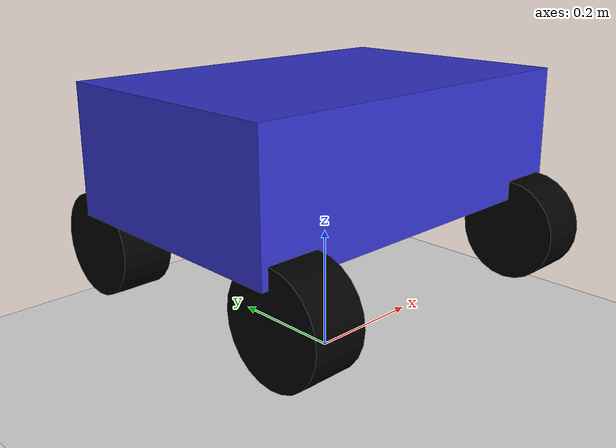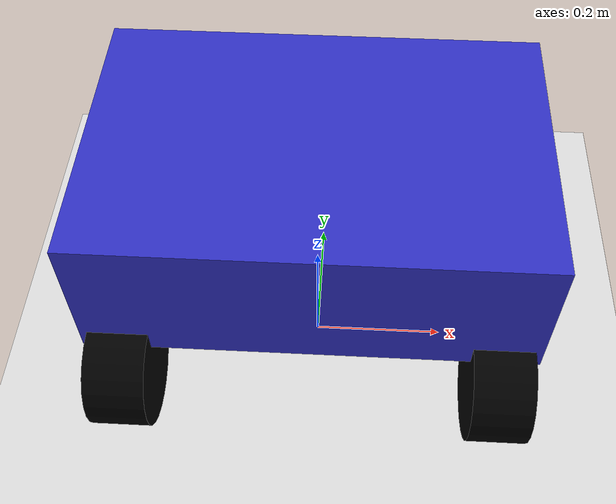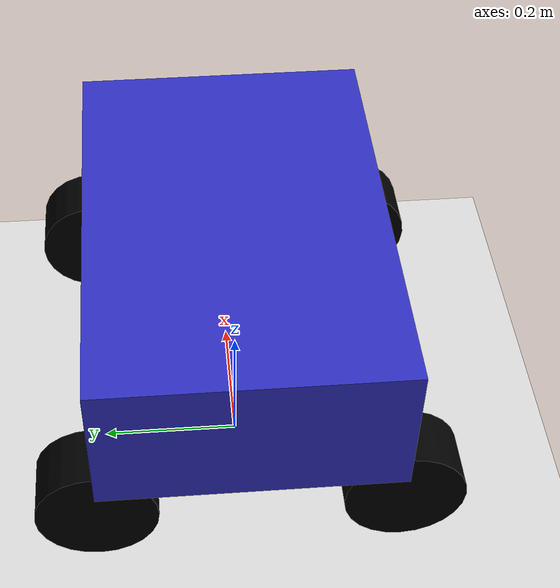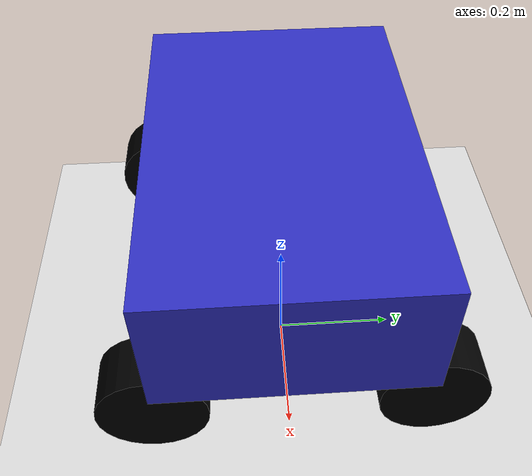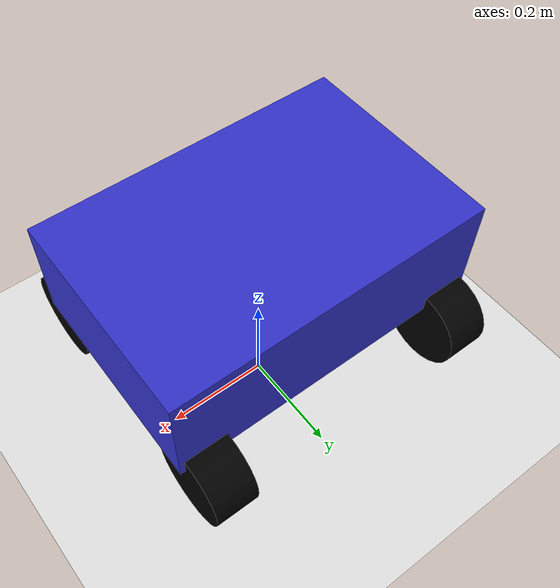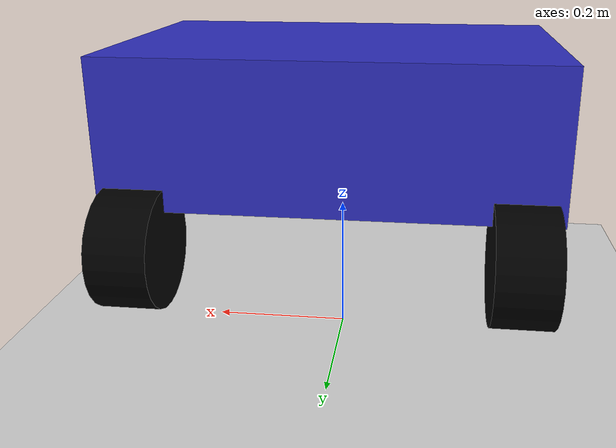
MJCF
<mujoco>
  <option timestep="0.002" gravity="0 0 -9.81" />
  <compiler angle="degree" />

  <default>
    <geom friction="1.5 0.1 0.1" density="800" />
  </default>

  <worldbody>

    <!-- Ground -->
    <geom type="plane" size="10 10 0.1" rgba="0.9 0.9 0.9 1" />

    <!-- ================= VEHICLE ================= -->
    <body name="chassis" pos="0 0 0.35">

      <!-- Chassis -->
      <geom type="box" size="0.3 0.2 0.1" rgba="0.2 0.2 0.8 1" />

      <!-- ========== REAR LEFT (DRIVE) ========== -->
      <body pos="-0.25  0.20 -0.15">
        <joint name="rear_left" type="hinge" axis="0 1 0" />
        <geom
                    type="cylinder"
                    size="0.08 0.04"
                    quat="0.7071 0 0.7071 0"
                    rgba="0 0 0 1"
                />
      </body>

      <!-- ========== REAR RIGHT (DRIVE) ========== -->
      <body pos="-0.25 -0.20 -0.15">
        <joint name="rear_right" type="hinge" axis="0 1 0" />
        <geom
                    type="cylinder"
                    size="0.08 0.04"
                    quat="0.7071 0 0.7071 0"
                    rgba="0 0 0 1"
                />
      </body>

      <!-- ========== FRONT LEFT (STEER + ROLL) ========== -->
      <body pos="0.25  0.20 -0.15">
        <!-- Steering joint -->
        <joint name="steer_fl" type="hinge" axis="0 0 1" range="-30 30" />

        <!-- REQUIRED inertial for steering body -->
        <inertial pos="0 0 0" mass="0.5" diaginertia="0.001 0.001 0.001" />

        <!-- Wheel -->
        <body>
          <joint name="wheel_fl" type="hinge" axis="0 1 0" />
          <geom
                        type="cylinder"
                        size="0.08 0.04"
                        quat="0.7071 0 0.7071 0"
                        rgba="0 0 0 1"
                    />
        </body>
      </body>

      <!-- ========== FRONT RIGHT (STEER + ROLL) ========== -->
      <body pos="0.25 -0.20 -0.15">
        <joint name="steer_fr" type="hinge" axis="0 0 1" range="-30 30" />

        <!-- REQUIRED inertial for steering body -->
        <inertial pos="0 0 0" mass="0.5" diaginertia="0.001 0.001 0.001" />

        <body>
          <joint name="wheel_fr" type="hinge" axis="0 1 0" />
          <geom
                        type="cylinder"
                        size="0.08 0.04"
                        quat="0.7071 0 0.7071 0"
                        rgba="0 0 0 1"
                    />
        </body>
      </body>

    </body>
  </worldbody>

  <!-- ================= ACTUATORS ================= -->
  <actuator>

    <!-- Rear-wheel differential drive -->
    <motor joint="rear_left" gear="40" />
    <motor joint="rear_right" gear="40" />

    <!-- Front steering -->
    <position joint="steer_fl" kp="80" />
    <position joint="steer_fr" kp="80" />

  </actuator>

</mujoco>
